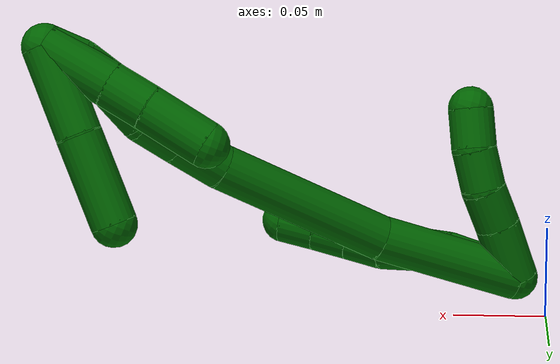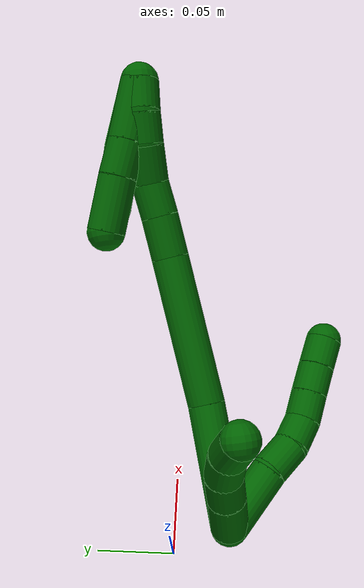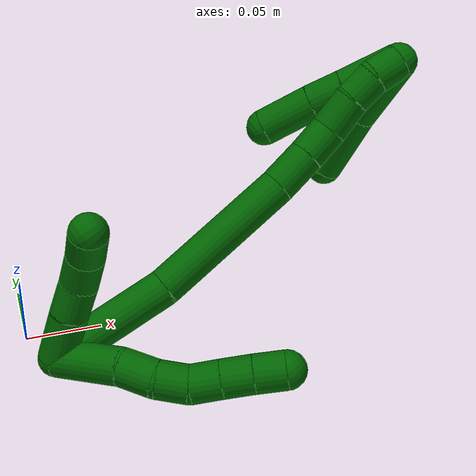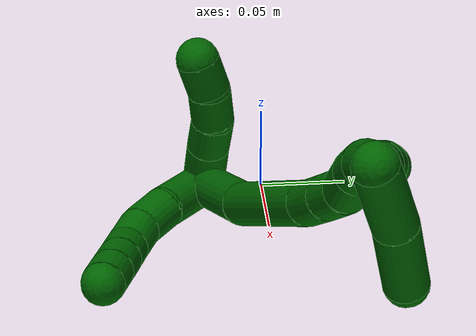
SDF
<sdf version="1.7">
 <world name="default">
  <model name="6">
   <static>0</static>
   <link name="6">
    <collision name="collision-cylinder-e_1_2_8">
     <pose>-0.010529 0.012312 0.015666 -0.666111 -0.486125 0.171144</pose>
     <geometry><cylinder><radius>0.0125</radius><length>0.045072</length></cylinder></geometry>
     <surface>
      <friction><ode><mu>1.16</mu><mu2>1.16</mu2><slip1>0</slip1><slip2>0</slip2></ode></friction>
      <contact><ode><kp>1e+06</kp><kd>1</kd><max_vel>0</max_vel><min_depth>0.001</min_depth></ode></contact>
     </surface>
    </collision>
    <visual name="visual-cylinder-e_1_2_8">
     <pose>-0.010529 0.012312 0.015666 -0.666111 -0.486125 0.171144</pose>
     <geometry><cylinder><radius>0.0125</radius><length>0.045072</length></cylinder></geometry>
     <material><ambient>0 0.392157 0.003922 1</ambient></material>
    </visual>
    <collision name="collision-cylinder-e_2_8_9">
     <pose>-0.028555 0.030823 0.038115 -0.740324 -0.684368 0.274703</pose>
     <geometry><cylinder><radius>0.0125</radius><length>0.023719</length></cylinder></geometry>
     <surface>
      <friction><ode><mu>1.16</mu><mu2>1.16</mu2><slip1>0</slip1><slip2>0</slip2></ode></friction>
      <contact><ode><kp>1e+06</kp><kd>1</kd><max_vel>0</max_vel><min_depth>0.001</min_depth></ode></contact>
     </surface>
    </collision>
    <visual name="visual-cylinder-e_2_8_9">
     <pose>-0.028555 0.030823 0.038115 -0.740324 -0.684368 0.274703</pose>
     <geometry><cylinder><radius>0.0125</radius><length>0.023719</length></cylinder></geometry>
     <material><ambient>0 0.392157 0.003922 1</ambient></material>
    </visual>
    <collision name="collision-cylinder-e_3_9_10">
     <pose>-0.042467 0.040317 0.052433 -0.412372 -0.662441 0.143607</pose>
     <geometry><cylinder><radius>0.0125</radius><length>0.020859</length></cylinder></geometry>
     <surface>
      <friction><ode><mu>1.16</mu><mu2>1.16</mu2><slip1>0</slip1><slip2>0</slip2></ode></friction>
      <contact><ode><kp>1e+06</kp><kd>1</kd><max_vel>0</max_vel><min_depth>0.001</min_depth></ode></contact>
     </surface>
    </collision>
    <visual name="visual-cylinder-e_3_9_10">
     <pose>-0.042467 0.040317 0.052433 -0.412372 -0.662441 0.143607</pose>
     <geometry><cylinder><radius>0.0125</radius><length>0.020859</length></cylinder></geometry>
     <material><ambient>0 0.392157 0.003922 1</ambient></material>
    </visual>
    <collision name="collision-cylinder-e_4_10_11">
     <pose>-0.052268 0.046381 0.069015 -0.296912 -0.343733 0.051908</pose>
     <geometry><cylinder><radius>0.0125</radius><length>0.020098</length></cylinder></geometry>
     <surface>
      <friction><ode><mu>1.16</mu><mu2>1.16</mu2><slip1>0</slip1><slip2>0</slip2></ode></friction>
      <contact><ode><kp>1e+06</kp><kd>1</kd><max_vel>0</max_vel><min_depth>0.001</min_depth></ode></contact>
     </surface>
    </collision>
    <visual name="visual-cylinder-e_4_10_11">
     <pose>-0.052268 0.046381 0.069015 -0.296912 -0.343733 0.051908</pose>
     <geometry><cylinder><radius>0.0125</radius><length>0.020098</length></cylinder></geometry>
     <material><ambient>0 0.392157 0.003922 1</ambient></material>
    </visual>
    <collision name="collision-cylinder-e_5_11_12">
     <pose>-0.05916 0.052051 0.087006 -0.313759 -0.356805 0.05703</pose>
     <geometry><cylinder><radius>0.0125</radius><length>0.02007</length></cylinder></geometry>
     <surface>
      <friction><ode><mu>1.16</mu><mu2>1.16</mu2><slip1>0</slip1><slip2>0</slip2></ode></friction>
      <contact><ode><kp>1e+06</kp><kd>1</kd><max_vel>0</max_vel><min_depth>0.001</min_depth></ode></contact>
     </surface>
    </collision>
    <visual name="visual-cylinder-e_5_11_12">
     <pose>-0.05916 0.052051 0.087006 -0.313759 -0.356805 0.05703</pose>
     <geometry><cylinder><radius>0.0125</radius><length>0.02007</length></cylinder></geometry>
     <material><ambient>0 0.392157 0.003922 1</ambient></material>
    </visual>
    <collision name="collision-cylinder-e_6_12_6">
     <pose>-0.066476 0.057876 0.104824 -0.318165 -0.387255 0.062898</pose>
     <geometry><cylinder><radius>0.0125</radius><length>0.020182</length></cylinder></geometry>
     <surface>
      <friction><ode><mu>1.16</mu><mu2>1.16</mu2><slip1>0</slip1><slip2>0</slip2></ode></friction>
      <contact><ode><kp>1e+06</kp><kd>1</kd><max_vel>0</max_vel><min_depth>0.001</min_depth></ode></contact>
     </surface>
    </collision>
    <visual name="visual-cylinder-e_6_12_6">
     <pose>-0.066476 0.057876 0.104824 -0.318165 -0.387255 0.062898</pose>
     <geometry><cylinder><radius>0.0125</radius><length>0.020182</length></cylinder></geometry>
     <material><ambient>0 0.392157 0.003922 1</ambient></material>
    </visual>
    <collision name="collision-cylinder-e_1_2_13">
     <pose>0.010882 0.005026 0.011154 -0.42337 0.726962 -0.163129</pose>
     <geometry><cylinder><radius>0.0125</radius><length>0.032747</length></cylinder></geometry>
     <surface>
      <friction><ode><mu>1.16</mu><mu2>1.16</mu2><slip1>0</slip1><slip2>0</slip2></ode></friction>
      <contact><ode><kp>1e+06</kp><kd>1</kd><max_vel>0</max_vel><min_depth>0.001</min_depth></ode></contact>
     </surface>
    </collision>
    <visual name="visual-cylinder-e_1_2_13">
     <pose>0.010882 0.005026 0.011154 -0.42337 0.726962 -0.163129</pose>
     <geometry><cylinder><radius>0.0125</radius><length>0.032747</length></cylinder></geometry>
     <material><ambient>0 0.392157 0.003922 1</ambient></material>
    </visual>
    <collision name="collision-cylinder-e_2_13_14">
     <pose>0.029063 0.013213 0.030338 -0.37497 0.702056 -0.138721</pose>
     <geometry><cylinder><radius>0.0125</radius><length>0.022606</length></cylinder></geometry>
     <surface>
      <friction><ode><mu>1.16</mu><mu2>1.16</mu2><slip1>0</slip1><slip2>0</slip2></ode></friction>
      <contact><ode><kp>1e+06</kp><kd>1</kd><max_vel>0</max_vel><min_depth>0.001</min_depth></ode></contact>
     </surface>
    </collision>
    <visual name="visual-cylinder-e_2_13_14">
     <pose>0.029063 0.013213 0.030338 -0.37497 0.702056 -0.138721</pose>
     <geometry><cylinder><radius>0.0125</radius><length>0.022606</length></cylinder></geometry>
     <material><ambient>0 0.392157 0.003922 1</ambient></material>
    </visual>
    <collision name="collision-cylinder-e_3_14_15">
     <pose>0.043723 0.021815 0.045001 -0.687078 0.709164 -0.263347</pose>
     <geometry><cylinder><radius>0.0125</radius><length>0.022607</length></cylinder></geometry>
     <surface>
      <friction><ode><mu>1.16</mu><mu2>1.16</mu2><slip1>0</slip1><slip2>0</slip2></ode></friction>
      <contact><ode><kp>1e+06</kp><kd>1</kd><max_vel>0</max_vel><min_depth>0.001</min_depth></ode></contact>
     </surface>
    </collision>
    <visual name="visual-cylinder-e_3_14_15">
     <pose>0.043723 0.021815 0.045001 -0.687078 0.709164 -0.263347</pose>
     <geometry><cylinder><radius>0.0125</radius><length>0.022607</length></cylinder></geometry>
     <material><ambient>0 0.392157 0.003922 1</ambient></material>
    </visual>
    <collision name="collision-cylinder-e_4_15_5">
     <pose>0.057995 0.034474 0.056278 -0.99896 0.677887 -0.380078</pose>
     <geometry><cylinder><radius>0.0125</radius><length>0.02204</length></cylinder></geometry>
     <surface>
      <friction><ode><mu>1.16</mu><mu2>1.16</mu2><slip1>0</slip1><slip2>0</slip2></ode></friction>
      <contact><ode><kp>1e+06</kp><kd>1</kd><max_vel>0</max_vel><min_depth>0.001</min_depth></ode></contact>
     </surface>
    </collision>
    <visual name="visual-cylinder-e_4_15_5">
     <pose>0.057995 0.034474 0.056278 -0.99896 0.677887 -0.380078</pose>
     <geometry><cylinder><radius>0.0125</radius><length>0.02204</length></cylinder></geometry>
     <material><ambient>0 0.392157 0.003922 1</ambient></material>
    </visual>
    <collision name="collision-cylinder-e_1_2_16">
     <pose>-0.001879 -0.003377 0.040533 0.08313 -0.046156 -0.00192</pose>
     <geometry><cylinder><radius>0.0125</radius><length>0.081434</length></cylinder></geometry>
     <surface>
      <friction><ode><mu>1.16</mu><mu2>1.16</mu2><slip1>0</slip1><slip2>0</slip2></ode></friction>
      <contact><ode><kp>1e+06</kp><kd>1</kd><max_vel>0</max_vel><min_depth>0.001</min_depth></ode></contact>
     </surface>
    </collision>
    <visual name="visual-cylinder-e_1_2_16">
     <pose>-0.001879 -0.003377 0.040533 0.08313 -0.046156 -0.00192</pose>
     <geometry><cylinder><radius>0.0125</radius><length>0.081434</length></cylinder></geometry>
     <material><ambient>0 0.392157 0.003922 1</ambient></material>
    </visual>
    <collision name="collision-cylinder-e_2_16_17">
     <pose>0.001887 -0.010495 0.131048 0.074698 0.112142 0.004195</pose>
     <geometry><cylinder><radius>0.0125</radius><length>0.100876</length></cylinder></geometry>
     <surface>
      <friction><ode><mu>1.16</mu><mu2>1.16</mu2><slip1>0</slip1><slip2>0</slip2></ode></friction>
      <contact><ode><kp>1e+06</kp><kd>1</kd><max_vel>0</max_vel><min_depth>0.001</min_depth></ode></contact>
     </surface>
    </collision>
    <visual name="visual-cylinder-e_2_16_17">
     <pose>0.001887 -0.010495 0.131048 0.074698 0.112142 0.004195</pose>
     <geometry><cylinder><radius>0.0125</radius><length>0.100876</length></cylinder></geometry>
     <material><ambient>0 0.392157 0.003922 1</ambient></material>
    </visual>
    <collision name="collision-cylinder-e_3_17_18">
     <pose>0.010523 -0.014701 0.194897 0.03358 0.212365 0.003579</pose>
     <geometry><cylinder><radius>0.0125</radius><length>0.028389</length></cylinder></geometry>
     <surface>
      <friction><ode><mu>1.16</mu><mu2>1.16</mu2><slip1>0</slip1><slip2>0</slip2></ode></friction>
      <contact><ode><kp>1e+06</kp><kd>1</kd><max_vel>0</max_vel><min_depth>0.001</min_depth></ode></contact>
     </surface>
    </collision>
    <visual name="visual-cylinder-e_3_17_18">
     <pose>0.010523 -0.014701 0.194897 0.03358 0.212365 0.003579</pose>
     <geometry><cylinder><radius>0.0125</radius><length>0.028389</length></cylinder></geometry>
     <material><ambient>0 0.392157 0.003922 1</ambient></material>
    </visual>
    <collision name="collision-cylinder-e_4_18_19">
     <pose>0.016396 -0.015813 0.220041 0.057176 0.249745 0.007179</pose>
     <geometry><cylinder><radius>0.0125</radius><length>0.023314</length></cylinder></geometry>
     <surface>
      <friction><ode><mu>1.16</mu><mu2>1.16</mu2><slip1>0</slip1><slip2>0</slip2></ode></friction>
      <contact><ode><kp>1e+06</kp><kd>1</kd><max_vel>0</max_vel><min_depth>0.001</min_depth></ode></contact>
     </surface>
    </collision>
    <visual name="visual-cylinder-e_4_18_19">
     <pose>0.016396 -0.015813 0.220041 0.057176 0.249745 0.007179</pose>
     <geometry><cylinder><radius>0.0125</radius><length>0.023314</length></cylinder></geometry>
     <material><ambient>0 0.392157 0.003922 1</ambient></material>
    </visual>
    <collision name="collision-cylinder-e_5_19_20">
     <pose>0.024328 -0.014151 0.242873 -0.197107 0.404947 -0.040589</pose>
     <geometry><cylinder><radius>0.0125</radius><length>0.025639</length></cylinder></geometry>
     <surface>
      <friction><ode><mu>1.16</mu><mu2>1.16</mu2><slip1>0</slip1><slip2>0</slip2></ode></friction>
      <contact><ode><kp>1e+06</kp><kd>1</kd><max_vel>0</max_vel><min_depth>0.001</min_depth></ode></contact>
     </surface>
    </collision>
    <visual name="visual-cylinder-e_5_19_20">
     <pose>0.024328 -0.014151 0.242873 -0.197107 0.404947 -0.040589</pose>
     <geometry><cylinder><radius>0.0125</radius><length>0.025639</length></cylinder></geometry>
     <material><ambient>0 0.392157 0.003922 1</ambient></material>
    </visual>
    <collision name="collision-cylinder-e_6_20_21">
     <pose>0.031701 -0.010478 0.264176 -0.139104 0.231748 -0.016217</pose>
     <geometry><cylinder><radius>0.0125</radius><length>0.020229</length></cylinder></geometry>
     <surface>
      <friction><ode><mu>1.16</mu><mu2>1.16</mu2><slip1>0</slip1><slip2>0</slip2></ode></friction>
      <contact><ode><kp>1e+06</kp><kd>1</kd><max_vel>0</max_vel><min_depth>0.001</min_depth></ode></contact>
     </surface>
    </collision>
    <visual name="visual-cylinder-e_6_20_21">
     <pose>0.031701 -0.010478 0.264176 -0.139104 0.231748 -0.016217</pose>
     <geometry><cylinder><radius>0.0125</radius><length>0.020229</length></cylinder></geometry>
     <material><ambient>0 0.392157 0.003922 1</ambient></material>
    </visual>
    <collision name="collision-cylinder-e_7_21_1">
     <pose>0.033851 -0.008384 0.283957 -0.072573 -0.017197 0.000624</pose>
     <geometry><cylinder><radius>0.0125</radius><length>0.020119</length></cylinder></geometry>
     <surface>
      <friction><ode><mu>1.16</mu><mu2>1.16</mu2><slip1>0</slip1><slip2>0</slip2></ode></friction>
      <contact><ode><kp>1e+06</kp><kd>1</kd><max_vel>0</max_vel><min_depth>0.001</min_depth></ode></contact>
     </surface>
    </collision>
    <visual name="visual-cylinder-e_7_21_1">
     <pose>0.033851 -0.008384 0.283957 -0.072573 -0.017197 0.000624</pose>
     <geometry><cylinder><radius>0.0125</radius><length>0.020119</length></cylinder></geometry>
     <material><ambient>0 0.392157 0.003922 1</ambient></material>
    </visual>
    <collision name="collision-cylinder-e_1_1_22">
     <pose>0.034992 -0.014342 0.275246 2.79887 0.0659 0.376419</pose>
     <geometry><cylinder><radius>0.0125</radius><length>0.039887</length></cylinder></geometry>
     <surface>
      <friction><ode><mu>1.16</mu><mu2>1.16</mu2><slip1>0</slip1><slip2>0</slip2></ode></friction>
      <contact><ode><kp>1e+06</kp><kd>1</kd><max_vel>0</max_vel><min_depth>0.001</min_depth></ode></contact>
     </surface>
    </collision>
    <visual name="visual-cylinder-e_1_1_22">
     <pose>0.034992 -0.014342 0.275246 2.79887 0.0659 0.376419</pose>
     <geometry><cylinder><radius>0.0125</radius><length>0.039887</length></cylinder></geometry>
     <material><ambient>0 0.392157 0.003922 1</ambient></material>
    </visual>
    <collision name="collision-cylinder-e_2_22_23">
     <pose>0.03723 -0.025503 0.245441 2.75735 0.077337 0.392648</pose>
     <geometry><cylinder><radius>0.0125</radius><length>0.023936</length></cylinder></geometry>
     <surface>
      <friction><ode><mu>1.16</mu><mu2>1.16</mu2><slip1>0</slip1><slip2>0</slip2></ode></friction>
      <contact><ode><kp>1e+06</kp><kd>1</kd><max_vel>0</max_vel><min_depth>0.001</min_depth></ode></contact>
     </surface>
    </collision>
    <visual name="visual-cylinder-e_2_22_23">
     <pose>0.03723 -0.025503 0.245441 2.75735 0.077337 0.392648</pose>
     <geometry><cylinder><radius>0.0125</radius><length>0.023936</length></cylinder></geometry>
     <material><ambient>0 0.392157 0.003922 1</ambient></material>
    </visual>
    <collision name="collision-cylinder-e_3_23_4">
     <pose>0.038795 -0.036255 0.217427 2.78686 0.035423 0.196999</pose>
     <geometry><cylinder><radius>0.0125</radius><length>0.036177</length></cylinder></geometry>
     <surface>
      <friction><ode><mu>1.16</mu><mu2>1.16</mu2><slip1>0</slip1><slip2>0</slip2></ode></friction>
      <contact><ode><kp>1e+06</kp><kd>1</kd><max_vel>0</max_vel><min_depth>0.001</min_depth></ode></contact>
     </surface>
    </collision>
    <visual name="visual-cylinder-e_3_23_4">
     <pose>0.038795 -0.036255 0.217427 2.78686 0.035423 0.196999</pose>
     <geometry><cylinder><radius>0.0125</radius><length>0.036177</length></cylinder></geometry>
     <material><ambient>0 0.392157 0.003922 1</ambient></material>
    </visual>
    <collision name="collision-cylinder-e_1_1_24">
     <pose>0.02218 -0.0228 0.277662 2.39372 -0.476623 -1.10867</pose>
     <geometry><cylinder><radius>0.0125</radius><length>0.050125</length></cylinder></geometry>
     <surface>
      <friction><ode><mu>1.16</mu><mu2>1.16</mu2><slip1>0</slip1><slip2>0</slip2></ode></friction>
      <contact><ode><kp>1e+06</kp><kd>1</kd><max_vel>0</max_vel><min_depth>0.001</min_depth></ode></contact>
     </surface>
    </collision>
    <visual name="visual-cylinder-e_1_1_24">
     <pose>0.02218 -0.0228 0.277662 2.39372 -0.476623 -1.10867</pose>
     <geometry><cylinder><radius>0.0125</radius><length>0.050125</length></cylinder></geometry>
     <material><ambient>0 0.392157 0.003922 1</ambient></material>
    </visual>
    <collision name="collision-cylinder-e_2_24_3">
     <pose>-0.0021 -0.051252 0.244561 2.47096 -0.538165 -1.3389</pose>
     <geometry><cylinder><radius>0.0125</radius><length>0.049875</length></cylinder></geometry>
     <surface>
      <friction><ode><mu>1.16</mu><mu2>1.16</mu2><slip1>0</slip1><slip2>0</slip2></ode></friction>
      <contact><ode><kp>1e+06</kp><kd>1</kd><max_vel>0</max_vel><min_depth>0.001</min_depth></ode></contact>
     </surface>
    </collision>
    <visual name="visual-cylinder-e_2_24_3">
     <pose>-0.0021 -0.051252 0.244561 2.47096 -0.538165 -1.3389</pose>
     <geometry><cylinder><radius>0.0125</radius><length>0.049875</length></cylinder></geometry>
     <material><ambient>0 0.392157 0.003922 1</ambient></material>
    </visual>
    <collision name="collision-sphere-3">
     <pose>-0.014882 -0.06456 0.227785 0 -0 0</pose>
     <geometry><sphere><radius>0.0125</radius></sphere></geometry>
     <surface>
      <friction><ode><mu>1.16</mu><mu2>1.16</mu2><slip1>0</slip1><slip2>0</slip2></ode></friction>
      <contact><ode><kp>1e+06</kp><kd>1</kd><max_vel>0</max_vel><min_depth>0.001</min_depth></ode></contact>
     </surface>
    </collision>
    <visual name="visual-sphere-3">
     <pose>-0.014882 -0.06456 0.227785 0 -0 0</pose>
     <geometry><sphere><radius>0.0125</radius></sphere></geometry>
     <material><ambient>0 0.392157 0.003922 1</ambient></material>
    </visual>
    <collision name="collision-sphere-24">
     <pose>0.010682 -0.037945 0.261336 0 -0 0</pose>
     <geometry><sphere><radius>0.0125</radius></sphere></geometry>
     <surface>
      <friction><ode><mu>1.16</mu><mu2>1.16</mu2><slip1>0</slip1><slip2>0</slip2></ode></friction>
      <contact><ode><kp>1e+06</kp><kd>1</kd><max_vel>0</max_vel><min_depth>0.001</min_depth></ode></contact>
     </surface>
    </collision>
    <visual name="visual-sphere-24">
     <pose>0.010682 -0.037945 0.261336 0 -0 0</pose>
     <geometry><sphere><radius>0.0125</radius></sphere></geometry>
     <material><ambient>0 0.392157 0.003922 1</ambient></material>
    </visual>
    <collision name="collision-sphere-4">
     <pose>0.039435 -0.042534 0.200476 0 -0 0</pose>
     <geometry><sphere><radius>0.0125</radius></sphere></geometry>
     <surface>
      <friction><ode><mu>1.16</mu><mu2>1.16</mu2><slip1>0</slip1><slip2>0</slip2></ode></friction>
      <contact><ode><kp>1e+06</kp><kd>1</kd><max_vel>0</max_vel><min_depth>0.001</min_depth></ode></contact>
     </surface>
    </collision>
    <visual name="visual-sphere-4">
     <pose>0.039435 -0.042534 0.200476 0 -0 0</pose>
     <geometry><sphere><radius>0.0125</radius></sphere></geometry>
     <material><ambient>0 0.392157 0.003922 1</ambient></material>
    </visual>
    <collision name="collision-sphere-23">
     <pose>0.038154 -0.029976 0.234379 0 -0 0</pose>
     <geometry><sphere><radius>0.0125</radius></sphere></geometry>
     <surface>
      <friction><ode><mu>1.16</mu><mu2>1.16</mu2><slip1>0</slip1><slip2>0</slip2></ode></friction>
      <contact><ode><kp>1e+06</kp><kd>1</kd><max_vel>0</max_vel><min_depth>0.001</min_depth></ode></contact>
     </surface>
    </collision>
    <visual name="visual-sphere-23">
     <pose>0.038154 -0.029976 0.234379 0 -0 0</pose>
     <geometry><sphere><radius>0.0125</radius></sphere></geometry>
     <material><ambient>0 0.392157 0.003922 1</ambient></material>
    </visual>
    <collision name="collision-sphere-22">
     <pose>0.036305 -0.02103 0.256503 0 -0 0</pose>
     <geometry><sphere><radius>0.0125</radius></sphere></geometry>
     <surface>
      <friction><ode><mu>1.16</mu><mu2>1.16</mu2><slip1>0</slip1><slip2>0</slip2></ode></friction>
      <contact><ode><kp>1e+06</kp><kd>1</kd><max_vel>0</max_vel><min_depth>0.001</min_depth></ode></contact>
     </surface>
    </collision>
    <visual name="visual-sphere-22">
     <pose>0.036305 -0.02103 0.256503 0 -0 0</pose>
     <geometry><sphere><radius>0.0125</radius></sphere></geometry>
     <material><ambient>0 0.392157 0.003922 1</ambient></material>
    </visual>
    <collision name="collision-sphere-1">
     <pose>0.033678 -0.007655 0.293989 0 -0 0</pose>
     <geometry><sphere><radius>0.0125</radius></sphere></geometry>
     <surface>
      <friction><ode><mu>1.16</mu><mu2>1.16</mu2><slip1>0</slip1><slip2>0</slip2></ode></friction>
      <contact><ode><kp>1e+06</kp><kd>1</kd><max_vel>0</max_vel><min_depth>0.001</min_depth></ode></contact>
     </surface>
    </collision>
    <visual name="visual-sphere-1">
     <pose>0.033678 -0.007655 0.293989 0 -0 0</pose>
     <geometry><sphere><radius>0.0125</radius></sphere></geometry>
     <material><ambient>0 0.392157 0.003922 1</ambient></material>
    </visual>
    <collision name="collision-sphere-21">
     <pose>0.034024 -0.009113 0.273925 0 -0 0</pose>
     <geometry><sphere><radius>0.0125</radius></sphere></geometry>
     <surface>
      <friction><ode><mu>1.16</mu><mu2>1.16</mu2><slip1>0</slip1><slip2>0</slip2></ode></friction>
      <contact><ode><kp>1e+06</kp><kd>1</kd><max_vel>0</max_vel><min_depth>0.001</min_depth></ode></contact>
     </surface>
    </collision>
    <visual name="visual-sphere-21">
     <pose>0.034024 -0.009113 0.273925 0 -0 0</pose>
     <geometry><sphere><radius>0.0125</radius></sphere></geometry>
     <material><ambient>0 0.392157 0.003922 1</ambient></material>
    </visual>
    <collision name="collision-sphere-12">
     <pose>-0.062665 0.054953 0.09595 0 -0 0</pose>
     <geometry><sphere><radius>0.0125</radius></sphere></geometry>
     <surface>
      <friction><ode><mu>1.16</mu><mu2>1.16</mu2><slip1>0</slip1><slip2>0</slip2></ode></friction>
      <contact><ode><kp>1e+06</kp><kd>1</kd><max_vel>0</max_vel><min_depth>0.001</min_depth></ode></contact>
     </surface>
    </collision>
    <visual name="visual-sphere-12">
     <pose>-0.062665 0.054953 0.09595 0 -0 0</pose>
     <geometry><sphere><radius>0.0125</radius></sphere></geometry>
     <material><ambient>0 0.392157 0.003922 1</ambient></material>
    </visual>
    <collision name="collision-sphere-11">
     <pose>-0.055655 0.049149 0.078062 0 -0 0</pose>
     <geometry><sphere><radius>0.0125</radius></sphere></geometry>
     <surface>
      <friction><ode><mu>1.16</mu><mu2>1.16</mu2><slip1>0</slip1><slip2>0</slip2></ode></friction>
      <contact><ode><kp>1e+06</kp><kd>1</kd><max_vel>0</max_vel><min_depth>0.001</min_depth></ode></contact>
     </surface>
    </collision>
    <visual name="visual-sphere-11">
     <pose>-0.055655 0.049149 0.078062 0 -0 0</pose>
     <geometry><sphere><radius>0.0125</radius></sphere></geometry>
     <material><ambient>0 0.392157 0.003922 1</ambient></material>
    </visual>
    <collision name="collision-sphere-10">
     <pose>-0.048882 0.043613 0.059968 0 -0 0</pose>
     <geometry><sphere><radius>0.0125</radius></sphere></geometry>
     <surface>
      <friction><ode><mu>1.16</mu><mu2>1.16</mu2><slip1>0</slip1><slip2>0</slip2></ode></friction>
      <contact><ode><kp>1e+06</kp><kd>1</kd><max_vel>0</max_vel><min_depth>0.001</min_depth></ode></contact>
     </surface>
    </collision>
    <visual name="visual-sphere-10">
     <pose>-0.048882 0.043613 0.059968 0 -0 0</pose>
     <geometry><sphere><radius>0.0125</radius></sphere></geometry>
     <material><ambient>0 0.392157 0.003922 1</ambient></material>
    </visual>
    <collision name="collision-sphere-9">
     <pose>-0.036053 0.037021 0.044899 0 -0 0</pose>
     <geometry><sphere><radius>0.0125</radius></sphere></geometry>
     <surface>
      <friction><ode><mu>1.16</mu><mu2>1.16</mu2><slip1>0</slip1><slip2>0</slip2></ode></friction>
      <contact><ode><kp>1e+06</kp><kd>1</kd><max_vel>0</max_vel><min_depth>0.001</min_depth></ode></contact>
     </surface>
    </collision>
    <visual name="visual-sphere-9">
     <pose>-0.036053 0.037021 0.044899 0 -0 0</pose>
     <geometry><sphere><radius>0.0125</radius></sphere></geometry>
     <material><ambient>0 0.392157 0.003922 1</ambient></material>
    </visual>
    <collision name="collision-sphere-2">
     <geometry><sphere><radius>0.0125</radius></sphere></geometry>
     <surface>
      <friction><ode><mu>1.16</mu><mu2>1.16</mu2><slip1>0</slip1><slip2>0</slip2></ode></friction>
      <contact><ode><kp>1e+06</kp><kd>1</kd><max_vel>0</max_vel><min_depth>0.001</min_depth></ode></contact>
     </surface>
    </collision>
    <visual name="visual-sphere-2">
     <geometry><sphere><radius>0.0125</radius></sphere></geometry>
     <material><ambient>0 0.392157 0.003922 1</ambient></material>
    </visual>
    <collision name="collision-sphere-19">
     <pose>0.019277 -0.016458 0.231318 0 -0 0</pose>
     <geometry><sphere><radius>0.0125</radius></sphere></geometry>
     <surface>
      <friction><ode><mu>1.16</mu><mu2>1.16</mu2><slip1>0</slip1><slip2>0</slip2></ode></friction>
      <contact><ode><kp>1e+06</kp><kd>1</kd><max_vel>0</max_vel><min_depth>0.001</min_depth></ode></contact>
     </surface>
    </collision>
    <visual name="visual-sphere-19">
     <pose>0.019277 -0.016458 0.231318 0 -0 0</pose>
     <geometry><sphere><radius>0.0125</radius></sphere></geometry>
     <material><ambient>0 0.392157 0.003922 1</ambient></material>
    </visual>
    <collision name="collision-sphere-8">
     <pose>-0.021058 0.024625 0.031331 0 -0 0</pose>
     <geometry><sphere><radius>0.0125</radius></sphere></geometry>
     <surface>
      <friction><ode><mu>1.16</mu><mu2>1.16</mu2><slip1>0</slip1><slip2>0</slip2></ode></friction>
      <contact><ode><kp>1e+06</kp><kd>1</kd><max_vel>0</max_vel><min_depth>0.001</min_depth></ode></contact>
     </surface>
    </collision>
    <visual name="visual-sphere-8">
     <pose>-0.021058 0.024625 0.031331 0 -0 0</pose>
     <geometry><sphere><radius>0.0125</radius></sphere></geometry>
     <material><ambient>0 0.392157 0.003922 1</ambient></material>
    </visual>
    <collision name="collision-sphere-6">
     <pose>-0.070287 0.060799 0.113699 0 -0 0</pose>
     <geometry><sphere><radius>0.0125</radius></sphere></geometry>
     <surface>
      <friction><ode><mu>1.16</mu><mu2>1.16</mu2><slip1>0</slip1><slip2>0</slip2></ode></friction>
      <contact><ode><kp>1e+06</kp><kd>1</kd><max_vel>0</max_vel><min_depth>0.001</min_depth></ode></contact>
     </surface>
    </collision>
    <visual name="visual-sphere-6">
     <pose>-0.070287 0.060799 0.113699 0 -0 0</pose>
     <geometry><sphere><radius>0.0125</radius></sphere></geometry>
     <material><ambient>0 0.392157 0.003922 1</ambient></material>
    </visual>
    <collision name="collision-sphere-13">
     <pose>0.021764 0.010052 0.022308 0 -0 0</pose>
     <geometry><sphere><radius>0.0125</radius></sphere></geometry>
     <surface>
      <friction><ode><mu>1.16</mu><mu2>1.16</mu2><slip1>0</slip1><slip2>0</slip2></ode></friction>
      <contact><ode><kp>1e+06</kp><kd>1</kd><max_vel>0</max_vel><min_depth>0.001</min_depth></ode></contact>
     </surface>
    </collision>
    <visual name="visual-sphere-13">
     <pose>0.021764 0.010052 0.022308 0 -0 0</pose>
     <geometry><sphere><radius>0.0125</radius></sphere></geometry>
     <material><ambient>0 0.392157 0.003922 1</ambient></material>
    </visual>
    <collision name="collision-sphere-14">
     <pose>0.036362 0.016374 0.038369 0 -0 0</pose>
     <geometry><sphere><radius>0.0125</radius></sphere></geometry>
     <surface>
      <friction><ode><mu>1.16</mu><mu2>1.16</mu2><slip1>0</slip1><slip2>0</slip2></ode></friction>
      <contact><ode><kp>1e+06</kp><kd>1</kd><max_vel>0</max_vel><min_depth>0.001</min_depth></ode></contact>
     </surface>
    </collision>
    <visual name="visual-sphere-14">
     <pose>0.036362 0.016374 0.038369 0 -0 0</pose>
     <geometry><sphere><radius>0.0125</radius></sphere></geometry>
     <material><ambient>0 0.392157 0.003922 1</ambient></material>
    </visual>
    <collision name="collision-sphere-15">
     <pose>0.051084 0.027256 0.051633 0 -0 0</pose>
     <geometry><sphere><radius>0.0125</radius></sphere></geometry>
     <surface>
      <friction><ode><mu>1.16</mu><mu2>1.16</mu2><slip1>0</slip1><slip2>0</slip2></ode></friction>
      <contact><ode><kp>1e+06</kp><kd>1</kd><max_vel>0</max_vel><min_depth>0.001</min_depth></ode></contact>
     </surface>
    </collision>
    <visual name="visual-sphere-15">
     <pose>0.051084 0.027256 0.051633 0 -0 0</pose>
     <geometry><sphere><radius>0.0125</radius></sphere></geometry>
     <material><ambient>0 0.392157 0.003922 1</ambient></material>
    </visual>
    <collision name="collision-sphere-5">
     <pose>0.064906 0.041692 0.060923 0 -0 0</pose>
     <geometry><sphere><radius>0.0125</radius></sphere></geometry>
     <surface>
      <friction><ode><mu>1.16</mu><mu2>1.16</mu2><slip1>0</slip1><slip2>0</slip2></ode></friction>
      <contact><ode><kp>1e+06</kp><kd>1</kd><max_vel>0</max_vel><min_depth>0.001</min_depth></ode></contact>
     </surface>
    </collision>
    <visual name="visual-sphere-5">
     <pose>0.064906 0.041692 0.060923 0 -0 0</pose>
     <geometry><sphere><radius>0.0125</radius></sphere></geometry>
     <material><ambient>0 0.392157 0.003922 1</ambient></material>
    </visual>
    <collision name="collision-sphere-16">
     <pose>-0.003757 -0.006755 0.081067 0 -0 0</pose>
     <geometry><sphere><radius>0.0125</radius></sphere></geometry>
     <surface>
      <friction><ode><mu>1.16</mu><mu2>1.16</mu2><slip1>0</slip1><slip2>0</slip2></ode></friction>
      <contact><ode><kp>1e+06</kp><kd>1</kd><max_vel>0</max_vel><min_depth>0.001</min_depth></ode></contact>
     </surface>
    </collision>
    <visual name="visual-sphere-16">
     <pose>-0.003757 -0.006755 0.081067 0 -0 0</pose>
     <geometry><sphere><radius>0.0125</radius></sphere></geometry>
     <material><ambient>0 0.392157 0.003922 1</ambient></material>
    </visual>
    <collision name="collision-sphere-17">
     <pose>0.007531 -0.014236 0.181029 0 -0 0</pose>
     <geometry><sphere><radius>0.0125</radius></sphere></geometry>
     <surface>
      <friction><ode><mu>1.16</mu><mu2>1.16</mu2><slip1>0</slip1><slip2>0</slip2></ode></friction>
      <contact><ode><kp>1e+06</kp><kd>1</kd><max_vel>0</max_vel><min_depth>0.001</min_depth></ode></contact>
     </surface>
    </collision>
    <visual name="visual-sphere-17">
     <pose>0.007531 -0.014236 0.181029 0 -0 0</pose>
     <geometry><sphere><radius>0.0125</radius></sphere></geometry>
     <material><ambient>0 0.392157 0.003922 1</ambient></material>
    </visual>
    <collision name="collision-sphere-18">
     <pose>0.013515 -0.015167 0.208765 0 -0 0</pose>
     <geometry><sphere><radius>0.0125</radius></sphere></geometry>
     <surface>
      <friction><ode><mu>1.16</mu><mu2>1.16</mu2><slip1>0</slip1><slip2>0</slip2></ode></friction>
      <contact><ode><kp>1e+06</kp><kd>1</kd><max_vel>0</max_vel><min_depth>0.001</min_depth></ode></contact>
     </surface>
    </collision>
    <visual name="visual-sphere-18">
     <pose>0.013515 -0.015167 0.208765 0 -0 0</pose>
     <geometry><sphere><radius>0.0125</radius></sphere></geometry>
     <material><ambient>0 0.392157 0.003922 1</ambient></material>
    </visual>
    <collision name="collision-sphere-20">
     <pose>0.029378 -0.011843 0.254427 0 -0 0</pose>
     <geometry><sphere><radius>0.0125</radius></sphere></geometry>
     <surface>
      <friction><ode><mu>1.16</mu><mu2>1.16</mu2><slip1>0</slip1><slip2>0</slip2></ode></friction>
      <contact><ode><kp>1e+06</kp><kd>1</kd><max_vel>0</max_vel><min_depth>0.001</min_depth></ode></contact>
     </surface>
    </collision>
    <visual name="visual-sphere-20">
     <pose>0.029378 -0.011843 0.254427 0 -0 0</pose>
     <geometry><sphere><radius>0.0125</radius></sphere></geometry>
     <material><ambient>0 0.392157 0.003922 1</ambient></material>
    </visual>
    <inertial>
     <pose>0.0067 -0.002758 0.142085 0 -0 0</pose>
     <mass>0.75</mass>
     <inertia>
      <ixx>0.000174</ixx>
      <ixy>0</ixy>
      <ixz>0</ixz>
      <iyy>0.000145</iyy>
      <iyz>0</iyz>
      <izz>4.4e-05</izz>
     </inertia>
    </inertial>
   </link>
   <pose>0.01573 -0.036109 0.011304 0.789949 -0.962734 2.42916</pose>
  </model>
 </world>
</sdf>
